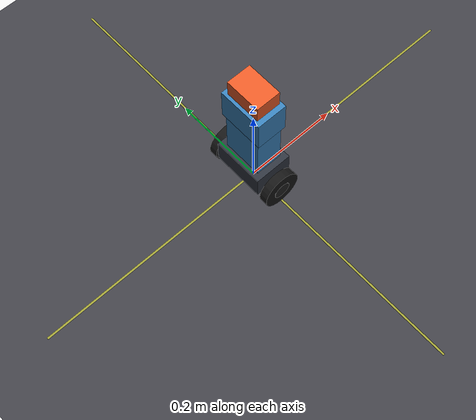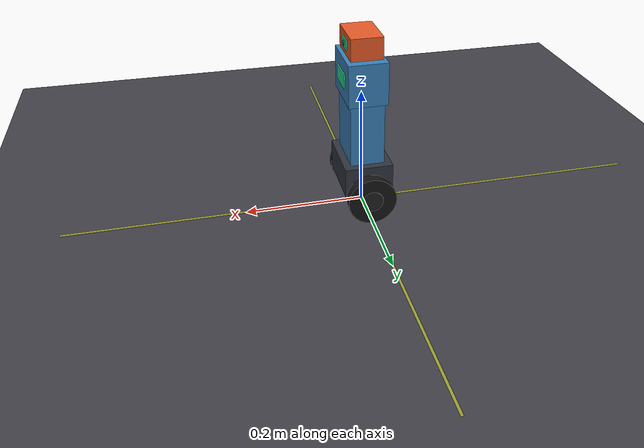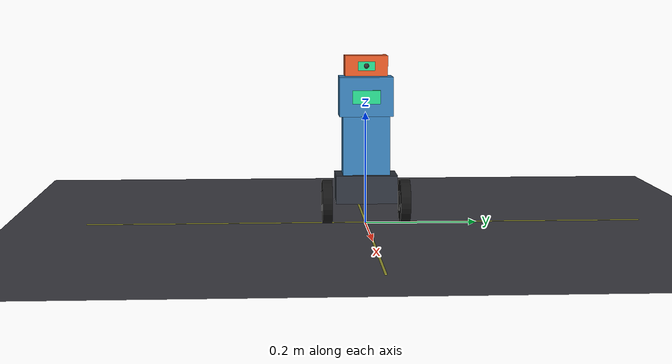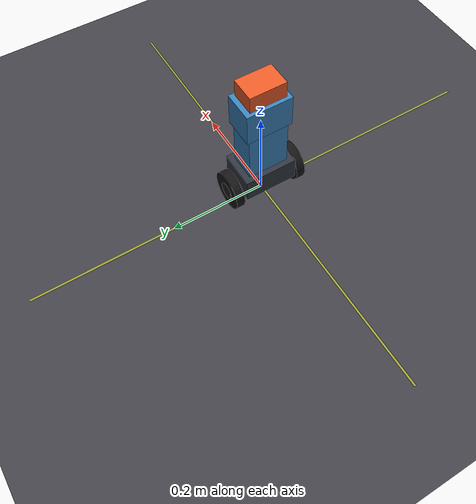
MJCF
<mujoco model="deskbot_scene">
  <!--
    DeskBot simulation scene.
    Includes the robot model and adds environment (ground, lighting).
  -->

  <include file="deskbot.xml"/>

  <option timestep="0.002" gravity="0 0 -9.81" integrator="implicitfast">
    <flag multiccd="enable"/>
  </option>

  <visual>
    <headlight diffuse="0.5 0.5 0.5" ambient="0.3 0.3 0.3"/>
    <global offwidth="1280" offheight="720"/>
    <quality shadowsize="4096"/>
  </visual>

  <statistic center="0 0 0.15" extent="0.6"/>

  <asset>
    <texture type="2d" name="grid_tex" builtin="checker" width="512" height="512"
             rgb1="0.22 0.22 0.25" rgb2="0.28 0.28 0.30"
             mark="edge" markrgb="0.3 0.3 0.3"/>
    <material name="ground" texture="grid_tex" texrepeat="12 12"
              specular="0.15" shininess="0.1" reflectance="0.1"/>
    <material name="marker" rgba="0.9 0.9 0.2 0.6" specular="0" shininess="0"/>
  </asset>

  <worldbody>
    <!-- Lighting -->
    <light pos="1 -1 2.5" dir="-0.4 0.4 -1" diffuse="0.7 0.7 0.7" castshadow="true"/>
    <light pos="-1 1 2.0" dir="0.3 -0.3 -1" diffuse="0.3 0.3 0.35" castshadow="false"/>

    <!-- Ground plane -->
    <geom name="floor" type="plane" size="5 5 0.05" material="ground"
          contype="1" conaffinity="1"/>

    <!-- Origin markers -->
    <geom type="box" size="0.5 0.002 0.0005" pos="0 0 0.001" material="marker"
          contype="0" conaffinity="0"/>
    <geom type="box" size="0.002 0.5 0.0005" pos="0 0 0.001" material="marker"
          contype="0" conaffinity="0"/>
  </worldbody>
</mujoco>

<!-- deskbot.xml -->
<mujoco model="deskbot">

  <compiler angle="radian"/>

  <default>
    <joint damping="0.008" armature="0.001"/>
    <geom friction="1.2 0.005 0.001" condim="4" contype="1" conaffinity="1"
          solref="0.005 1.0"/>
    <motor ctrlrange="-3.0 3.0"/>

    <default class="wheel">
      <joint damping="0.003"/>
      <geom material="tire" mass="0.05"/>
    </default>
    <default class="hub">
      <geom material="wheel" contype="0" conaffinity="0" mass="0.005"/>
    </default>
    <default class="visual">
      <geom contype="0" conaffinity="0" mass="0.001"/>
    </default>
  </default>

  <asset>
    <material name="chassis" rgba="0.18 0.20 0.24 1" specular="0.6" shininess="0.4"/>
    <material name="body"    rgba="0.22 0.50 0.72 1" specular="0.5" shininess="0.3"/>
    <material name="accent"  rgba="0.90 0.35 0.15 1" specular="0.4" shininess="0.2"/>
    <material name="screen"  rgba="0.15 0.85 0.55 1" specular="0.8" shininess="0.9"
              emission="0.4"/>
    <material name="wheel"   rgba="0.12 0.12 0.12 1" specular="0.2" shininess="0.05"/>
    <material name="tire"    rgba="0.08 0.08 0.08 1" specular="0.05" shininess="0.01"/>
  </asset>

  <worldbody>
    <body name="chassis" pos="0 0 0.04">
      <joint type="free"/>
      <inertial pos="0 0 0.12" mass="0.586" diaginertia="0.001 0.001 0.0005"/>

      <!-- Motor housing (base) -->
      <geom name="base" type="box" size="0.04 0.055 0.025"
            pos="0 0 0.025" mass="0.12" material="chassis"/>

      <!-- Main body column -->
      <geom name="column" type="box" size="0.028 0.042 0.055"
            pos="0 0 0.105" mass="0.08" material="body"/>

      <!-- Battery compartment -->
      <geom name="battery" type="box" size="0.032 0.048 0.035"
            pos="0 0 0.19" mass="0.30" material="body"/>

      <!-- Head / sensor pod -->
      <geom name="head" type="box" size="0.026 0.038 0.018"
            pos="0 0 0.245" mass="0.08" material="accent"/>

      <!-- Front screen / LED indicator -->
      <geom name="screen" type="box" size="0.001 0.025 0.012"
            pos="0.033 0 0.19" material="screen" class="visual"/>

      <!-- Face indicator -->
      <geom name="face" type="box" size="0.001 0.015 0.008"
            pos="0.027 0 0.245" material="screen" class="visual"/>

      <!-- IMU sensor site (near CoM) -->
      <site name="imu" pos="0 0 0.12" size="0.003" rgba="1 0 0 0.5"/>

      <!-- Camera mount site (on head, forward-facing) -->
      <site name="cam_mount" pos="0.026 0 0.245" zaxis="1 0 0" size="0.005"
            rgba="0.2 0.2 0.2 1"/>

      <!-- Left wheel -->
      <body name="wheel_L" pos="0 0.07 0">
        <joint name="wheel_L" type="hinge" axis="0 1 0" class="wheel"/>
        <geom name="tire_L" type="cylinder" size="0.04 0.009"
              euler="1.5708 0 0" class="wheel"/>
        <geom name="hub_L" type="cylinder" size="0.018 0.01"
              euler="1.5708 0 0" class="hub"/>
      </body>

      <!-- Right wheel -->
      <body name="wheel_R" pos="0 -0.07 0">
        <joint name="wheel_R" type="hinge" axis="0 1 0" class="wheel"/>
        <geom name="tire_R" type="cylinder" size="0.04 0.009"
              euler="1.5708 0 0" class="wheel"/>
        <geom name="hub_R" type="cylinder" size="0.018 0.01"
              euler="1.5708 0 0" class="hub"/>
      </body>

      <!-- Robot-attached cameras -->
      <camera name="follow" mode="track" pos="0.6 -0.4 0.35"
              xyaxes="0.6 1 0 -0.2 0 1"/>
      <camera name="onboard" mode="fixed" pos="0.04 0 0.25"
              xyaxes="0 -1 0 0 0 1"/>
    </body>
  </worldbody>

  <actuator>
    <motor joint="wheel_L" name="motor_L" gear="1"/>
    <motor joint="wheel_R" name="motor_R" gear="1"/>
  </actuator>

  <sensor>
    <!-- IMU (MPU6050-like): accelerometer + gyroscope -->
    <accelerometer name="accel" site="imu"/>
    <gyro          name="gyro"  site="imu"/>
    <!-- Wheel encoders: angular velocity -->
    <jointvel name="enc_L" joint="wheel_L"/>
    <jointvel name="enc_R" joint="wheel_R"/>
  </sensor>
</mujoco>
